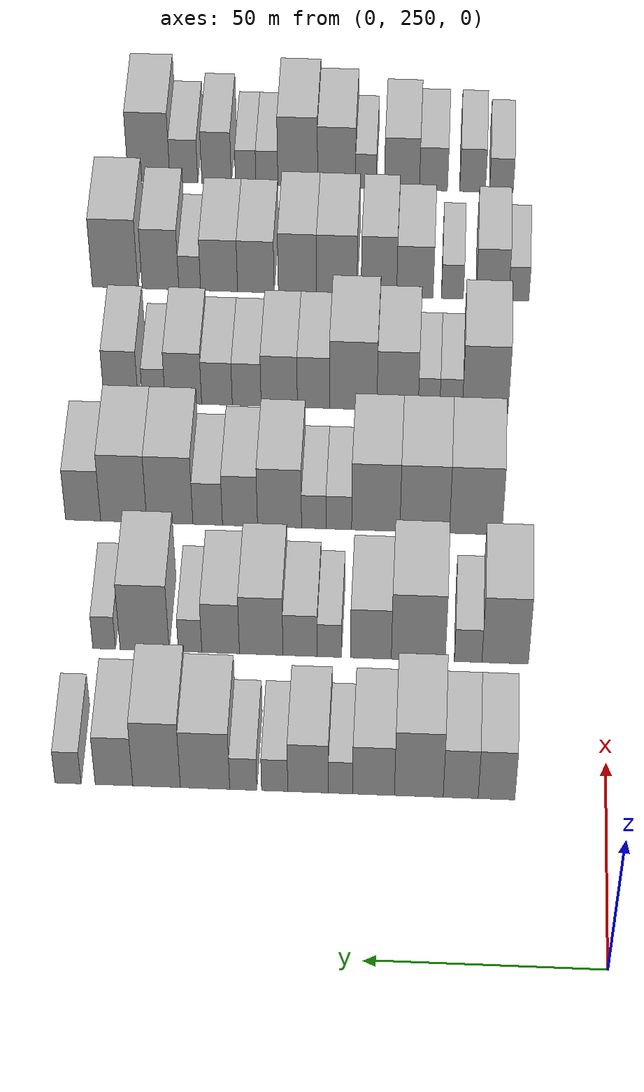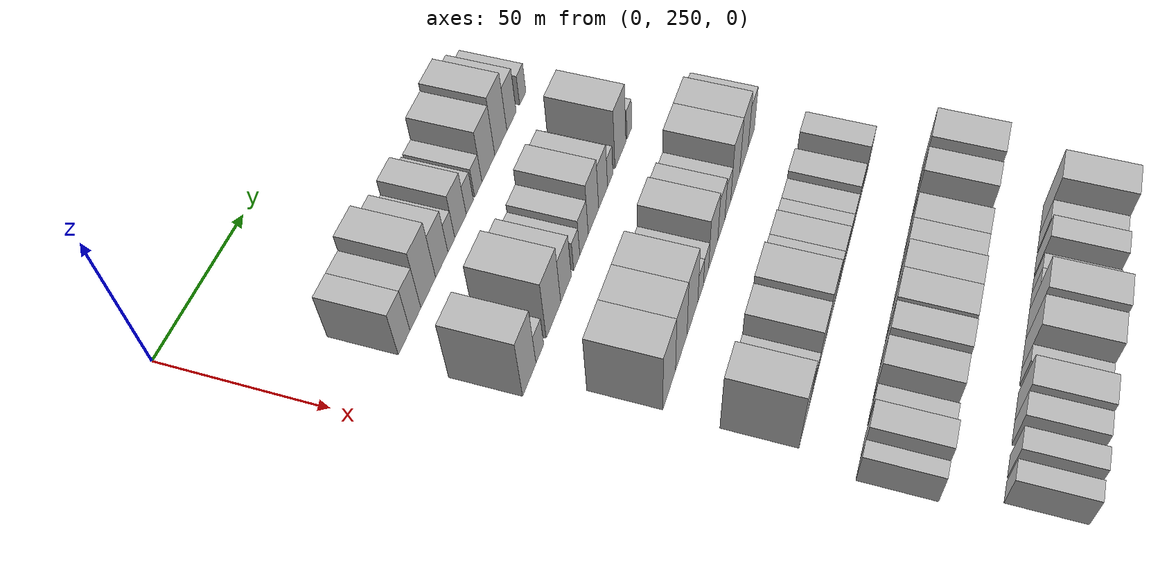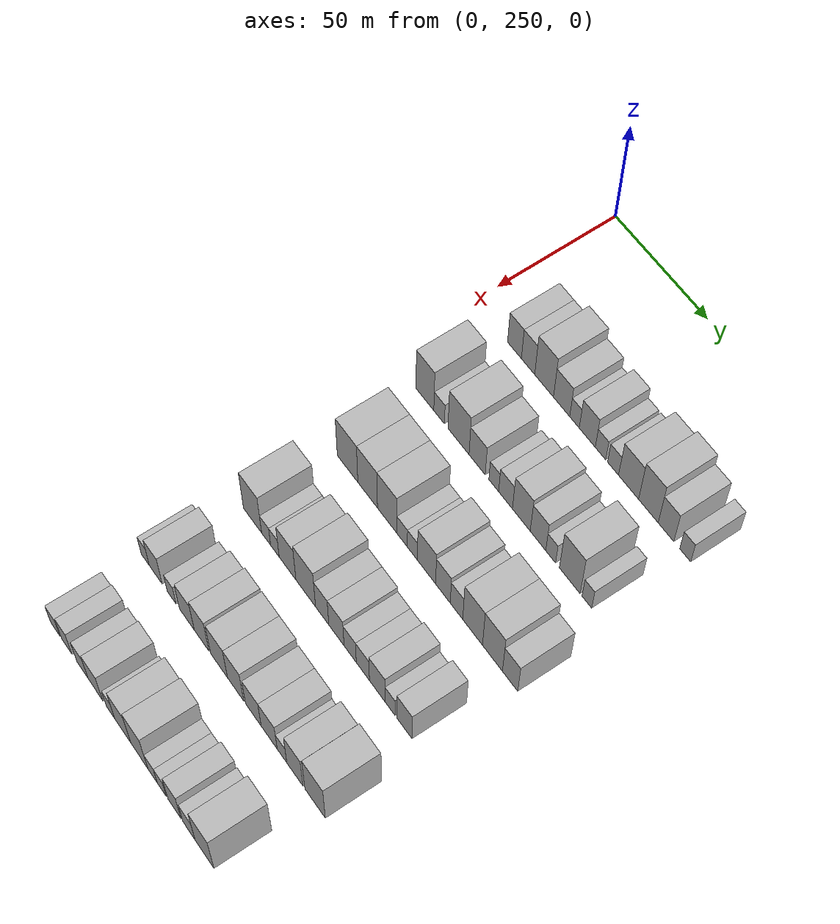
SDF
<sdf version="1.6">
 <world name="default">
  <model name="building_82">
   <static>1</static>
   <pose>50.0000 273.2638 0 0.000000 0.000000 0.000000</pose>
   <link name="link">
    <pose>0 0 9.00 0 0 0</pose>
    <collision name="collision"><geometry><box><size>20.0000 7.7485 18.0000</size></box></geometry></collision>
    <visual name="visual">
     <cast_shadows>0</cast_shadows>
     <geometry><box><size>20.0000 7.7485 18.0000</size></box></geometry>
     <material>
      <script>
       <uri>model://HANNAS_wall/materials/scripts</uri>
       <uri>model://HANNAS_wall/materials/textures</uri>
       <name>vrc/HANNAS_wall</name>
      </script>
     </material>
    </visual>
   </link>
  </model>
  <model name="building_83">
   <static>1</static>
   <pose>50.0000 280.8363 0 0.000000 0.000000 0.000000</pose>
   <link name="link">
    <pose>0 0 9.00 0 0 0</pose>
    <collision name="collision"><geometry><box><size>20.0000 7.3966 18.0000</size></box></geometry></collision>
    <visual name="visual">
     <cast_shadows>0</cast_shadows>
     <geometry><box><size>20.0000 7.3966 18.0000</size></box></geometry>
     <material>
      <script>
       <uri>model://HANNAS_wall/materials/scripts</uri>
       <uri>model://HANNAS_wall/materials/textures</uri>
       <name>vrc/HANNAS_wall</name>
      </script>
     </material>
    </visual>
   </link>
  </model>
  <model name="building_84">
   <static>1</static>
   <pose>50.0000 289.6935 0 0.000000 0.000000 0.000000</pose>
   <link name="link">
    <pose>0 0 12.00 0 0 0</pose>
    <collision name="collision"><geometry><box><size>20.0000 10.3177 24.0000</size></box></geometry></collision>
    <visual name="visual">
     <cast_shadows>0</cast_shadows>
     <geometry><box><size>20.0000 10.3177 24.0000</size></box></geometry>
     <material>
      <script>
       <uri>model://HANNAS_wall/materials/scripts</uri>
       <uri>model://HANNAS_wall/materials/textures</uri>
       <name>vrc/HANNAS_wall</name>
      </script>
     </material>
    </visual>
   </link>
  </model>
  <model name="building_85">
   <static>1</static>
   <pose>50.0000 299.2815 0 0.000000 0.000000 0.000000</pose>
   <link name="link">
    <pose>0 0 9.00 0 0 0</pose>
    <collision name="collision"><geometry><box><size>20.0000 8.8584 18.0000</size></box></geometry></collision>
    <visual name="visual">
     <cast_shadows>0</cast_shadows>
     <geometry><box><size>20.0000 8.8584 18.0000</size></box></geometry>
     <material>
      <script>
       <uri>model://HANNAS_wall/materials/scripts</uri>
       <uri>model://HANNAS_wall/materials/textures</uri>
       <name>vrc/HANNAS_wall</name>
      </script>
     </material>
    </visual>
   </link>
  </model>
  <model name="building_86">
   <static>1</static>
   <pose>50.0000 306.2784 0 0.000000 0.000000 0.000000</pose>
   <link name="link">
    <pose>0 0 6.00 0 0 0</pose>
    <collision name="collision"><geometry><box><size>20.0000 5.1353 12.0000</size></box></geometry></collision>
    <visual name="visual">
     <cast_shadows>0</cast_shadows>
     <geometry><box><size>20.0000 5.1353 12.0000</size></box></geometry>
     <material>
      <script>
       <uri>model://HANNAS_wall/materials/scripts</uri>
       <uri>model://HANNAS_wall/materials/textures</uri>
       <name>vrc/HANNAS_wall</name>
      </script>
     </material>
    </visual>
   </link>
  </model>
  <model name="building_87">
   <static>1</static>
   <pose>50.0000 313.1456 0 0.000000 0.000000 0.000000</pose>
   <link name="link">
    <pose>0 0 9.00 0 0 0</pose>
    <collision name="collision"><geometry><box><size>20.0000 8.5992 18.0000</size></box></geometry></collision>
    <visual name="visual">
     <cast_shadows>0</cast_shadows>
     <geometry><box><size>20.0000 8.5992 18.0000</size></box></geometry>
     <material>
      <script>
       <uri>model://HANNAS_wall/materials/scripts</uri>
       <uri>model://HANNAS_wall/materials/textures</uri>
       <name>vrc/HANNAS_wall</name>
      </script>
     </material>
    </visual>
   </link>
  </model>
  <model name="building_88">
   <static>1</static>
   <pose>50.0000 320.2169 0 0.000000 0.000000 0.000000</pose>
   <link name="link">
    <pose>0 0 6.00 0 0 0</pose>
    <collision name="collision"><geometry><box><size>20.0000 5.5434 12.0000</size></box></geometry></collision>
    <visual name="visual">
     <cast_shadows>0</cast_shadows>
     <geometry><box><size>20.0000 5.5434 12.0000</size></box></geometry>
     <material>
      <script>
       <uri>model://HANNAS_wall/materials/scripts</uri>
       <uri>model://HANNAS_wall/materials/textures</uri>
       <name>vrc/HANNAS_wall</name>
      </script>
     </material>
    </visual>
   </link>
  </model>
  <model name="building_89">
   <static>1</static>
   <pose>50.0000 326.8681 0 0.000000 0.000000 0.000000</pose>
   <link name="link">
    <pose>0 0 6.00 0 0 0</pose>
    <collision name="collision"><geometry><box><size>20.0000 5.7590 12.0000</size></box></geometry></collision>
    <visual name="visual">
     <cast_shadows>0</cast_shadows>
     <geometry><box><size>20.0000 5.7590 12.0000</size></box></geometry>
     <material>
      <script>
       <uri>model://HANNAS_wall/materials/scripts</uri>
       <uri>model://HANNAS_wall/materials/textures</uri>
       <name>vrc/HANNAS_wall</name>
      </script>
     </material>
    </visual>
   </link>
  </model>
  <model name="building_90">
   <static>1</static>
   <pose>50.0000 334.9891 0 0.000000 0.000000 0.000000</pose>
   <link name="link">
    <pose>0 0 10.50 0 0 0</pose>
    <collision name="collision"><geometry><box><size>20.0000 10.4832 21.0000</size></box></geometry></collision>
    <visual name="visual">
     <cast_shadows>0</cast_shadows>
     <geometry><box><size>20.0000 10.4832 21.0000</size></box></geometry>
     <material>
      <script>
       <uri>model://HANNAS_wall/materials/scripts</uri>
       <uri>model://HANNAS_wall/materials/textures</uri>
       <name>vrc/HANNAS_wall</name>
      </script>
     </material>
    </visual>
   </link>
  </model>
  <model name="building_91">
   <static>1</static>
   <pose>50.0000 345.2784 0 0.000000 0.000000 0.000000</pose>
   <link name="link">
    <pose>0 0 12.00 0 0 0</pose>
    <collision name="collision"><geometry><box><size>20.0000 10.0953 24.0000</size></box></geometry></collision>
    <visual name="visual">
     <cast_shadows>0</cast_shadows>
     <geometry><box><size>20.0000 10.0953 24.0000</size></box></geometry>
     <material>
      <script>
       <uri>model://HANNAS_wall/materials/scripts</uri>
       <uri>model://HANNAS_wall/materials/textures</uri>
       <name>vrc/HANNAS_wall</name>
      </script>
     </material>
    </visual>
   </link>
  </model>
  <model name="building_92">
   <static>1</static>
   <pose>50.0000 354.3296 0 0.000000 0.000000 0.000000</pose>
   <link name="link">
    <pose>0 0 9.00 0 0 0</pose>
    <collision name="collision"><geometry><box><size>20.0000 8.0071 18.0000</size></box></geometry></collision>
    <visual name="visual">
     <cast_shadows>0</cast_shadows>
     <geometry><box><size>20.0000 8.0071 18.0000</size></box></geometry>
     <material>
      <script>
       <uri>model://HANNAS_wall/materials/scripts</uri>
       <uri>model://HANNAS_wall/materials/textures</uri>
       <name>vrc/HANNAS_wall</name>
      </script>
     </material>
    </visual>
   </link>
  </model>
  <model name="building_93">
   <static>1</static>
   <pose>50.0000 364.1031 0 0.000000 0.000000 0.000000</pose>
   <link name="link">
    <pose>0 0 6.00 0 0 0</pose>
    <collision name="collision"><geometry><box><size>20.0000 5.5400 12.0000</size></box></geometry></collision>
    <visual name="visual">
     <cast_shadows>0</cast_shadows>
     <geometry><box><size>20.0000 5.5400 12.0000</size></box></geometry>
     <material>
      <script>
       <uri>model://HANNAS_wall/materials/scripts</uri>
       <uri>model://HANNAS_wall/materials/textures</uri>
       <name>vrc/HANNAS_wall</name>
      </script>
     </material>
    </visual>
   </link>
  </model>
  <model name="building_214">
   <static>1</static>
   <pose>85.0000 271.7934 0 0.000000 0.000000 0.000000</pose>
   <link name="link">
    <pose>0 0 12.00 0 0 0</pose>
    <collision name="collision"><geometry><box><size>20.0000 10.1428 24.0000</size></box></geometry></collision>
    <visual name="visual">
     <cast_shadows>0</cast_shadows>
     <geometry><box><size>20.0000 10.1428 24.0000</size></box></geometry>
     <material>
      <script>
       <uri>model://HANNAS_wall/materials/scripts</uri>
       <uri>model://HANNAS_wall/materials/textures</uri>
       <name>vrc/HANNAS_wall</name>
      </script>
     </material>
    </visual>
   </link>
  </model>
  <model name="building_215">
   <static>1</static>
   <pose>85.0000 279.8619 0 0.000000 0.000000 0.000000</pose>
   <link name="link">
    <pose>0 0 6.00 0 0 0</pose>
    <collision name="collision"><geometry><box><size>20.0000 5.9943 12.0000</size></box></geometry></collision>
    <visual name="visual">
     <cast_shadows>0</cast_shadows>
     <geometry><box><size>20.0000 5.9943 12.0000</size></box></geometry>
     <material>
      <script>
       <uri>model://HANNAS_wall/materials/scripts</uri>
       <uri>model://HANNAS_wall/materials/textures</uri>
       <name>vrc/HANNAS_wall</name>
      </script>
     </material>
    </visual>
   </link>
  </model>
  <model name="building_216">
   <static>1</static>
   <pose>85.0000 290.7375 0 0.000000 0.000000 0.000000</pose>
   <link name="link">
    <pose>0 0 12.00 0 0 0</pose>
    <collision name="collision"><geometry><box><size>20.0000 11.7570 24.0000</size></box></geometry></collision>
    <visual name="visual">
     <cast_shadows>0</cast_shadows>
     <geometry><box><size>20.0000 11.7570 24.0000</size></box></geometry>
     <material>
      <script>
       <uri>model://HANNAS_wall/materials/scripts</uri>
       <uri>model://HANNAS_wall/materials/textures</uri>
       <name>vrc/HANNAS_wall</name>
      </script>
     </material>
    </visual>
   </link>
  </model>
  <model name="building_217">
   <static>1</static>
   <pose>85.0000 301.0662 0 0.000000 0.000000 0.000000</pose>
   <link name="link">
    <pose>0 0 9.00 0 0 0</pose>
    <collision name="collision"><geometry><box><size>20.0000 8.9003 18.0000</size></box></geometry></collision>
    <visual name="visual">
     <cast_shadows>0</cast_shadows>
     <geometry><box><size>20.0000 8.9003 18.0000</size></box></geometry>
     <material>
      <script>
       <uri>model://HANNAS_wall/materials/scripts</uri>
       <uri>model://HANNAS_wall/materials/textures</uri>
       <name>vrc/HANNAS_wall</name>
      </script>
     </material>
    </visual>
   </link>
  </model>
  <model name="building_218">
   <static>1</static>
   <pose>85.0000 310.1659 0 0.000000 0.000000 0.000000</pose>
   <link name="link">
    <pose>0 0 6.00 0 0 0</pose>
    <collision name="collision"><geometry><box><size>20.0000 5.2990 12.0000</size></box></geometry></collision>
    <visual name="visual">
     <cast_shadows>0</cast_shadows>
     <geometry><box><size>20.0000 5.2990 12.0000</size></box></geometry>
     <material>
      <script>
       <uri>model://HANNAS_wall/materials/scripts</uri>
       <uri>model://HANNAS_wall/materials/textures</uri>
       <name>vrc/HANNAS_wall</name>
      </script>
     </material>
    </visual>
   </link>
  </model>
  <model name="building_219">
   <static>1</static>
   <pose>85.0000 316.5509 0 0.000000 0.000000 0.000000</pose>
   <link name="link">
    <pose>0 0 7.50 0 0 0</pose>
    <collision name="collision"><geometry><box><size>20.0000 7.4711 15.0000</size></box></geometry></collision>
    <visual name="visual">
     <cast_shadows>0</cast_shadows>
     <geometry><box><size>20.0000 7.4711 15.0000</size></box></geometry>
     <material>
      <script>
       <uri>model://HANNAS_wall/materials/scripts</uri>
       <uri>model://HANNAS_wall/materials/textures</uri>
       <name>vrc/HANNAS_wall</name>
      </script>
     </material>
    </visual>
   </link>
  </model>
  <model name="building_220">
   <static>1</static>
   <pose>85.0000 325.0482 0 0.000000 0.000000 0.000000</pose>
   <link name="link">
    <pose>0 0 10.50 0 0 0</pose>
    <collision name="collision"><geometry><box><size>20.0000 9.5236 21.0000</size></box></geometry></collision>
    <visual name="visual">
     <cast_shadows>0</cast_shadows>
     <geometry><box><size>20.0000 9.5236 21.0000</size></box></geometry>
     <material>
      <script>
       <uri>model://HANNAS_wall/materials/scripts</uri>
       <uri>model://HANNAS_wall/materials/textures</uri>
       <name>vrc/HANNAS_wall</name>
      </script>
     </material>
    </visual>
   </link>
  </model>
  <model name="building_221">
   <static>1</static>
   <pose>85.0000 333.9292 0 0.000000 0.000000 0.000000</pose>
   <link name="link">
    <pose>0 0 9.00 0 0 0</pose>
    <collision name="collision"><geometry><box><size>20.0000 8.2385 18.0000</size></box></geometry></collision>
    <visual name="visual">
     <cast_shadows>0</cast_shadows>
     <geometry><box><size>20.0000 8.2385 18.0000</size></box></geometry>
     <material>
      <script>
       <uri>model://HANNAS_wall/materials/scripts</uri>
       <uri>model://HANNAS_wall/materials/textures</uri>
       <name>vrc/HANNAS_wall</name>
      </script>
     </material>
    </visual>
   </link>
  </model>
  <model name="building_222">
   <static>1</static>
   <pose>85.0000 340.6288 0 0.000000 0.000000 0.000000</pose>
   <link name="link">
    <pose>0 0 6.00 0 0 0</pose>
    <collision name="collision"><geometry><box><size>20.0000 5.1607 12.0000</size></box></geometry></collision>
    <visual name="visual">
     <cast_shadows>0</cast_shadows>
     <geometry><box><size>20.0000 5.1607 12.0000</size></box></geometry>
     <material>
      <script>
       <uri>model://HANNAS_wall/materials/scripts</uri>
       <uri>model://HANNAS_wall/materials/textures</uri>
       <name>vrc/HANNAS_wall</name>
      </script>
     </material>
    </visual>
   </link>
  </model>
  <model name="building_223">
   <static>1</static>
   <pose>85.0000 350.5916 0 0.000000 0.000000 0.000000</pose>
   <link name="link">
    <pose>0 0 12.00 0 0 0</pose>
    <collision name="collision"><geometry><box><size>20.0000 10.7650 24.0000</size></box></geometry></collision>
    <visual name="visual">
     <cast_shadows>0</cast_shadows>
     <geometry><box><size>20.0000 10.7650 24.0000</size></box></geometry>
     <material>
      <script>
       <uri>model://HANNAS_wall/materials/scripts</uri>
       <uri>model://HANNAS_wall/materials/textures</uri>
       <name>vrc/HANNAS_wall</name>
      </script>
     </material>
    </visual>
   </link>
  </model>
  <model name="building_224">
   <static>1</static>
   <pose>85.0000 359.4635 0 0.000000 0.000000 0.000000</pose>
   <link name="link">
    <pose>0 0 6.00 0 0 0</pose>
    <collision name="collision"><geometry><box><size>20.0000 4.9787 12.0000</size></box></geometry></collision>
    <visual name="visual">
     <cast_shadows>0</cast_shadows>
     <geometry><box><size>20.0000 4.9787 12.0000</size></box></geometry>
     <material>
      <script>
       <uri>model://HANNAS_wall/materials/scripts</uri>
       <uri>model://HANNAS_wall/materials/textures</uri>
       <name>vrc/HANNAS_wall</name>
      </script>
     </material>
    </visual>
   </link>
  </model>
  <model name="building_347">
   <static>1</static>
   <pose>120.0000 278.7661 0 0.000000 0.000000 0.000000</pose>
   <link name="link">
    <pose>0 0 12.00 0 0 0</pose>
    <collision name="collision"><geometry><box><size>20.0000 11.8024 24.0000</size></box></geometry></collision>
    <visual name="visual">
     <cast_shadows>0</cast_shadows>
     <geometry><box><size>20.0000 11.8024 24.0000</size></box></geometry>
     <material>
      <script>
       <uri>model://HANNAS_wall/materials/scripts</uri>
       <uri>model://HANNAS_wall/materials/textures</uri>
       <name>vrc/HANNAS_wall</name>
      </script>
     </material>
    </visual>
   </link>
  </model>
  <model name="building_348">
   <static>1</static>
   <pose>120.0000 290.2264 0 0.000000 0.000000 0.000000</pose>
   <link name="link">
    <pose>0 0 12.00 0 0 0</pose>
    <collision name="collision"><geometry><box><size>20.0000 11.1183 24.0000</size></box></geometry></collision>
    <visual name="visual">
     <cast_shadows>0</cast_shadows>
     <geometry><box><size>20.0000 11.1183 24.0000</size></box></geometry>
     <material>
      <script>
       <uri>model://HANNAS_wall/materials/scripts</uri>
       <uri>model://HANNAS_wall/materials/textures</uri>
       <name>vrc/HANNAS_wall</name>
      </script>
     </material>
    </visual>
   </link>
  </model>
  <model name="building_349">
   <static>1</static>
   <pose>120.0000 301.2231 0 0.000000 0.000000 0.000000</pose>
   <link name="link">
    <pose>0 0 12.00 0 0 0</pose>
    <collision name="collision"><geometry><box><size>20.0000 10.8749 24.0000</size></box></geometry></collision>
    <visual name="visual">
     <cast_shadows>0</cast_shadows>
     <geometry><box><size>20.0000 10.8749 24.0000</size></box></geometry>
     <material>
      <script>
       <uri>model://HANNAS_wall/materials/scripts</uri>
       <uri>model://HANNAS_wall/materials/textures</uri>
       <name>vrc/HANNAS_wall</name>
      </script>
     </material>
    </visual>
   </link>
  </model>
  <model name="building_350">
   <static>1</static>
   <pose>120.0000 309.5581 0 0.000000 0.000000 0.000000</pose>
   <link name="link">
    <pose>0 0 6.00 0 0 0</pose>
    <collision name="collision"><geometry><box><size>20.0000 5.7952 12.0000</size></box></geometry></collision>
    <visual name="visual">
     <cast_shadows>0</cast_shadows>
     <geometry><box><size>20.0000 5.7952 12.0000</size></box></geometry>
     <material>
      <script>
       <uri>model://HANNAS_wall/materials/scripts</uri>
       <uri>model://HANNAS_wall/materials/textures</uri>
       <name>vrc/HANNAS_wall</name>
      </script>
     </material>
    </visual>
   </link>
  </model>
  <model name="building_351">
   <static>1</static>
   <pose>120.0000 315.2058 0 0.000000 0.000000 0.000000</pose>
   <link name="link">
    <pose>0 0 6.00 0 0 0</pose>
    <collision name="collision"><geometry><box><size>20.0000 5.5002 12.0000</size></box></geometry></collision>
    <visual name="visual">
     <cast_shadows>0</cast_shadows>
     <geometry><box><size>20.0000 5.5002 12.0000</size></box></geometry>
     <material>
      <script>
       <uri>model://HANNAS_wall/materials/scripts</uri>
       <uri>model://HANNAS_wall/materials/textures</uri>
       <name>vrc/HANNAS_wall</name>
      </script>
     </material>
    </visual>
   </link>
  </model>
  <model name="building_352">
   <static>1</static>
   <pose>120.0000 322.9151 0 0.000000 0.000000 0.000000</pose>
   <link name="link">
    <pose>0 0 10.50 0 0 0</pose>
    <collision name="collision"><geometry><box><size>20.0000 9.9185 21.0000</size></box></geometry></collision>
    <visual name="visual">
     <cast_shadows>0</cast_shadows>
     <geometry><box><size>20.0000 9.9185 21.0000</size></box></geometry>
     <material>
      <script>
       <uri>model://HANNAS_wall/materials/scripts</uri>
       <uri>model://HANNAS_wall/materials/textures</uri>
       <name>vrc/HANNAS_wall</name>
      </script>
     </material>
    </visual>
   </link>
  </model>
  <model name="building_353">
   <static>1</static>
   <pose>120.0000 331.8286 0 0.000000 0.000000 0.000000</pose>
   <link name="link">
    <pose>0 0 9.00 0 0 0</pose>
    <collision name="collision"><geometry><box><size>20.0000 7.9084 18.0000</size></box></geometry></collision>
    <visual name="visual">
     <cast_shadows>0</cast_shadows>
     <geometry><box><size>20.0000 7.9084 18.0000</size></box></geometry>
     <material>
      <script>
       <uri>model://HANNAS_wall/materials/scripts</uri>
       <uri>model://HANNAS_wall/materials/textures</uri>
       <name>vrc/HANNAS_wall</name>
      </script>
     </material>
    </visual>
   </link>
  </model>
  <model name="building_354">
   <static>1</static>
   <pose>120.0000 339.1162 0 0.000000 0.000000 0.000000</pose>
   <link name="link">
    <pose>0 0 7.50 0 0 0</pose>
    <collision name="collision"><geometry><box><size>20.0000 6.6668 15.0000</size></box></geometry></collision>
    <visual name="visual">
     <cast_shadows>0</cast_shadows>
     <geometry><box><size>20.0000 6.6668 15.0000</size></box></geometry>
     <material>
      <script>
       <uri>model://HANNAS_wall/materials/scripts</uri>
       <uri>model://HANNAS_wall/materials/textures</uri>
       <name>vrc/HANNAS_wall</name>
      </script>
     </material>
    </visual>
   </link>
  </model>
  <model name="building_355">
   <static>1</static>
   <pose>120.0000 347.6645 0 0.000000 0.000000 0.000000</pose>
   <link name="link">
    <pose>0 0 12.00 0 0 0</pose>
    <collision name="collision"><geometry><box><size>20.0000 10.4297 24.0000</size></box></geometry></collision>
    <visual name="visual">
     <cast_shadows>0</cast_shadows>
     <geometry><box><size>20.0000 10.4297 24.0000</size></box></geometry>
     <material>
      <script>
       <uri>model://HANNAS_wall/materials/scripts</uri>
       <uri>model://HANNAS_wall/materials/textures</uri>
       <name>vrc/HANNAS_wall</name>
      </script>
     </material>
    </visual>
   </link>
  </model>
  <model name="building_356">
   <static>1</static>
   <pose>120.0000 358.0957 0 0.000000 0.000000 0.000000</pose>
   <link name="link">
    <pose>0 0 12.00 0 0 0</pose>
    <collision name="collision"><geometry><box><size>20.0000 10.4328 24.0000</size></box></geometry></collision>
    <visual name="visual">
     <cast_shadows>0</cast_shadows>
     <geometry><box><size>20.0000 10.4328 24.0000</size></box></geometry>
     <material>
      <script>
       <uri>model://HANNAS_wall/materials/scripts</uri>
       <uri>model://HANNAS_wall/materials/textures</uri>
       <name>vrc/HANNAS_wall</name>
      </script>
     </material>
    </visual>
   </link>
  </model>
  <model name="building_357">
   <static>1</static>
   <pose>120.0000 367.2737 0 0.000000 0.000000 0.000000</pose>
   <link name="link">
    <pose>0 0 9.00 0 0 0</pose>
    <collision name="collision"><geometry><box><size>20.0000 7.9232 18.0000</size></box></geometry></collision>
    <visual name="visual">
     <cast_shadows>0</cast_shadows>
     <geometry><box><size>20.0000 7.9232 18.0000</size></box></geometry>
     <material>
      <script>
       <uri>model://HANNAS_wall/materials/scripts</uri>
       <uri>model://HANNAS_wall/materials/textures</uri>
       <name>vrc/HANNAS_wall</name>
      </script>
     </material>
    </visual>
   </link>
  </model>
  <model name="building_474">
   <static>1</static>
   <pose>155.0000 277.1230 0 0.000000 0.000000 0.000000</pose>
   <link name="link">
    <pose>0 0 12.00 0 0 0</pose>
    <collision name="collision"><geometry><box><size>20.0000 10.5882 24.0000</size></box></geometry></collision>
    <visual name="visual">
     <cast_shadows>0</cast_shadows>
     <geometry><box><size>20.0000 10.5882 24.0000</size></box></geometry>
     <material>
      <script>
       <uri>model://HANNAS_wall/materials/scripts</uri>
       <uri>model://HANNAS_wall/materials/textures</uri>
       <name>vrc/HANNAS_wall</name>
      </script>
     </material>
    </visual>
   </link>
  </model>
  <model name="building_475">
   <static>1</static>
   <pose>155.0000 285.0278 0 0.000000 0.000000 0.000000</pose>
   <link name="link">
    <pose>0 0 6.00 0 0 0</pose>
    <collision name="collision"><geometry><box><size>20.0000 5.2213 12.0000</size></box></geometry></collision>
    <visual name="visual">
     <cast_shadows>0</cast_shadows>
     <geometry><box><size>20.0000 5.2213 12.0000</size></box></geometry>
     <material>
      <script>
       <uri>model://HANNAS_wall/materials/scripts</uri>
       <uri>model://HANNAS_wall/materials/textures</uri>
       <name>vrc/HANNAS_wall</name>
      </script>
     </material>
    </visual>
   </link>
  </model>
  <model name="building_476">
   <static>1</static>
   <pose>155.0000 290.1247 0 0.000000 0.000000 0.000000</pose>
   <link name="link">
    <pose>0 0 6.00 0 0 0</pose>
    <collision name="collision"><geometry><box><size>20.0000 4.9726 12.0000</size></box></geometry></collision>
    <visual name="visual">
     <cast_shadows>0</cast_shadows>
     <geometry><box><size>20.0000 4.9726 12.0000</size></box></geometry>
     <material>
      <script>
       <uri>model://HANNAS_wall/materials/scripts</uri>
       <uri>model://HANNAS_wall/materials/textures</uri>
       <name>vrc/HANNAS_wall</name>
      </script>
     </material>
    </visual>
   </link>
  </model>
  <model name="building_477">
   <static>1</static>
   <pose>155.0000 297.3864 0 0.000000 0.000000 0.000000</pose>
   <link name="link">
    <pose>0 0 10.50 0 0 0</pose>
    <collision name="collision"><geometry><box><size>20.0000 9.5509 21.0000</size></box></geometry></collision>
    <visual name="visual">
     <cast_shadows>0</cast_shadows>
     <geometry><box><size>20.0000 9.5509 21.0000</size></box></geometry>
     <material>
      <script>
       <uri>model://HANNAS_wall/materials/scripts</uri>
       <uri>model://HANNAS_wall/materials/textures</uri>
       <name>vrc/HANNAS_wall</name>
      </script>
     </material>
    </visual>
   </link>
  </model>
  <model name="building_478">
   <static>1</static>
   <pose>155.0000 307.6846 0 0.000000 0.000000 0.000000</pose>
   <link name="link">
    <pose>0 0 12.00 0 0 0</pose>
    <collision name="collision"><geometry><box><size>20.0000 11.0455 24.0000</size></box></geometry></collision>
    <visual name="visual">
     <cast_shadows>0</cast_shadows>
     <geometry><box><size>20.0000 11.0455 24.0000</size></box></geometry>
     <material>
      <script>
       <uri>model://HANNAS_wall/materials/scripts</uri>
       <uri>model://HANNAS_wall/materials/textures</uri>
       <name>vrc/HANNAS_wall</name>
      </script>
     </material>
    </visual>
   </link>
  </model>
  <model name="building_479">
   <static>1</static>
   <pose>155.0000 316.9202 0 0.000000 0.000000 0.000000</pose>
   <link name="link">
    <pose>0 0 9.00 0 0 0</pose>
    <collision name="collision"><geometry><box><size>20.0000 7.4256 18.0000</size></box></geometry></collision>
    <visual name="visual">
     <cast_shadows>0</cast_shadows>
     <geometry><box><size>20.0000 7.4256 18.0000</size></box></geometry>
     <material>
      <script>
       <uri>model://HANNAS_wall/materials/scripts</uri>
       <uri>model://HANNAS_wall/materials/textures</uri>
       <name>vrc/HANNAS_wall</name>
      </script>
     </material>
    </visual>
   </link>
  </model>
  <model name="building_480">
   <static>1</static>
   <pose>155.0000 324.8369 0 0.000000 0.000000 0.000000</pose>
   <link name="link">
    <pose>0 0 9.00 0 0 0</pose>
    <collision name="collision"><geometry><box><size>20.0000 8.4078 18.0000</size></box></geometry></collision>
    <visual name="visual">
     <cast_shadows>0</cast_shadows>
     <geometry><box><size>20.0000 8.4078 18.0000</size></box></geometry>
     <material>
      <script>
       <uri>model://HANNAS_wall/materials/scripts</uri>
       <uri>model://HANNAS_wall/materials/textures</uri>
       <name>vrc/HANNAS_wall</name>
      </script>
     </material>
    </visual>
   </link>
  </model>
  <model name="building_481">
   <static>1</static>
   <pose>155.0000 332.3928 0 0.000000 0.000000 0.000000</pose>
   <link name="link">
    <pose>0 0 7.50 0 0 0</pose>
    <collision name="collision"><geometry><box><size>20.0000 6.7039 15.0000</size></box></geometry></collision>
    <visual name="visual">
     <cast_shadows>0</cast_shadows>
     <geometry><box><size>20.0000 6.7039 15.0000</size></box></geometry>
     <material>
      <script>
       <uri>model://HANNAS_wall/materials/scripts</uri>
       <uri>model://HANNAS_wall/materials/textures</uri>
       <name>vrc/HANNAS_wall</name>
      </script>
     </material>
    </visual>
   </link>
  </model>
  <model name="building_482">
   <static>1</static>
   <pose>155.0000 339.3131 0 0.000000 0.000000 0.000000</pose>
   <link name="link">
    <pose>0 0 7.50 0 0 0</pose>
    <collision name="collision"><geometry><box><size>20.0000 7.1367 15.0000</size></box></geometry></collision>
    <visual name="visual">
     <cast_shadows>0</cast_shadows>
     <geometry><box><size>20.0000 7.1367 15.0000</size></box></geometry>
     <material>
      <script>
       <uri>model://HANNAS_wall/materials/scripts</uri>
       <uri>model://HANNAS_wall/materials/textures</uri>
       <name>vrc/HANNAS_wall</name>
      </script>
     </material>
    </visual>
   </link>
  </model>
  <model name="building_483">
   <static>1</static>
   <pose>155.0000 347.1209 0 0.000000 0.000000 0.000000</pose>
   <link name="link">
    <pose>0 0 9.00 0 0 0</pose>
    <collision name="collision"><geometry><box><size>20.0000 8.4790 18.0000</size></box></geometry></collision>
    <visual name="visual">
     <cast_shadows>0</cast_shadows>
     <geometry><box><size>20.0000 8.4790 18.0000</size></box></geometry>
     <material>
      <script>
       <uri>model://HANNAS_wall/materials/scripts</uri>
       <uri>model://HANNAS_wall/materials/textures</uri>
       <name>vrc/HANNAS_wall</name>
      </script>
     </material>
    </visual>
   </link>
  </model>
  <model name="building_484">
   <static>1</static>
   <pose>155.0000 353.9993 0 0.000000 0.000000 0.000000</pose>
   <link name="link">
    <pose>0 0 6.00 0 0 0</pose>
    <collision name="collision"><geometry><box><size>20.0000 5.2779 12.0000</size></box></geometry></collision>
    <visual name="visual">
     <cast_shadows>0</cast_shadows>
     <geometry><box><size>20.0000 5.2779 12.0000</size></box></geometry>
     <material>
      <script>
       <uri>model://HANNAS_wall/materials/scripts</uri>
       <uri>model://HANNAS_wall/materials/textures</uri>
       <name>vrc/HANNAS_wall</name>
      </script>
     </material>
    </visual>
   </link>
  </model>
  <model name="building_485">
   <static>1</static>
   <pose>155.0000 361.6101 0 0.000000 0.000000 0.000000</pose>
   <link name="link">
    <pose>0 0 9.00 0 0 0</pose>
    <collision name="collision"><geometry><box><size>20.0000 7.9436 18.0000</size></box></geometry></collision>
    <visual name="visual">
     <cast_shadows>0</cast_shadows>
     <geometry><box><size>20.0000 7.9436 18.0000</size></box></geometry>
     <material>
      <script>
       <uri>model://HANNAS_wall/materials/scripts</uri>
       <uri>model://HANNAS_wall/materials/textures</uri>
       <name>vrc/HANNAS_wall</name>
      </script>
     </material>
    </visual>
   </link>
  </model>
  <model name="building_605">
   <static>1</static>
   <pose>190.0000 269.5944 0 0.000000 0.000000 0.000000</pose>
   <link name="link">
    <pose>0 0 6.00 0 0 0</pose>
    <collision name="collision"><geometry><box><size>20.0000 4.8261 12.0000</size></box></geometry></collision>
    <visual name="visual">
     <cast_shadows>0</cast_shadows>
     <geometry><box><size>20.0000 4.8261 12.0000</size></box></geometry>
     <material>
      <script>
       <uri>model://HANNAS_wall/materials/scripts</uri>
       <uri>model://HANNAS_wall/materials/textures</uri>
       <name>vrc/HANNAS_wall</name>
      </script>
     </material>
    </visual>
   </link>
  </model>
  <model name="building_606">
   <static>1</static>
   <pose>190.0000 275.8941 0 0.000000 0.000000 0.000000</pose>
   <link name="link">
    <pose>0 0 9.00 0 0 0</pose>
    <collision name="collision"><geometry><box><size>20.0000 7.7731 18.0000</size></box></geometry></collision>
    <visual name="visual">
     <cast_shadows>0</cast_shadows>
     <geometry><box><size>20.0000 7.7731 18.0000</size></box></geometry>
     <material>
      <script>
       <uri>model://HANNAS_wall/materials/scripts</uri>
       <uri>model://HANNAS_wall/materials/textures</uri>
       <name>vrc/HANNAS_wall</name>
      </script>
     </material>
    </visual>
   </link>
  </model>
  <model name="building_607">
   <static>1</static>
   <pose>190.0000 285.3867 0 0.000000 0.000000 0.000000</pose>
   <link name="link">
    <pose>0 0 6.00 0 0 0</pose>
    <collision name="collision"><geometry><box><size>20.0000 5.2121 12.0000</size></box></geometry></collision>
    <visual name="visual">
     <cast_shadows>0</cast_shadows>
     <geometry><box><size>20.0000 5.2121 12.0000</size></box></geometry>
     <material>
      <script>
       <uri>model://HANNAS_wall/materials/scripts</uri>
       <uri>model://HANNAS_wall/materials/textures</uri>
       <name>vrc/HANNAS_wall</name>
      </script>
     </material>
    </visual>
   </link>
  </model>
  <model name="building_608">
   <static>1</static>
   <pose>190.0000 294.3354 0 0.000000 0.000000 0.000000</pose>
   <link name="link">
    <pose>0 0 9.00 0 0 0</pose>
    <collision name="collision"><geometry><box><size>20.0000 8.6854 18.0000</size></box></geometry></collision>
    <visual name="visual">
     <cast_shadows>0</cast_shadows>
     <geometry><box><size>20.0000 8.6854 18.0000</size></box></geometry>
     <material>
      <script>
       <uri>model://HANNAS_wall/materials/scripts</uri>
       <uri>model://HANNAS_wall/materials/textures</uri>
       <name>vrc/HANNAS_wall</name>
      </script>
     </material>
    </visual>
   </link>
  </model>
  <model name="building_609">
   <static>1</static>
   <pose>190.0000 302.9078 0 0.000000 0.000000 0.000000</pose>
   <link name="link">
    <pose>0 0 10.50 0 0 0</pose>
    <collision name="collision"><geometry><box><size>20.0000 8.4595 21.0000</size></box></geometry></collision>
    <visual name="visual">
     <cast_shadows>0</cast_shadows>
     <geometry><box><size>20.0000 8.4595 21.0000</size></box></geometry>
     <material>
      <script>
       <uri>model://HANNAS_wall/materials/scripts</uri>
       <uri>model://HANNAS_wall/materials/textures</uri>
       <name>vrc/HANNAS_wall</name>
      </script>
     </material>
    </visual>
   </link>
  </model>
  <model name="building_610">
   <static>1</static>
   <pose>190.0000 312.9591 0 0.000000 0.000000 0.000000</pose>
   <link name="link">
    <pose>0 0 10.50 0 0 0</pose>
    <collision name="collision"><geometry><box><size>20.0000 9.6431 21.0000</size></box></geometry></collision>
    <visual name="visual">
     <cast_shadows>0</cast_shadows>
     <geometry><box><size>20.0000 9.6431 21.0000</size></box></geometry>
     <material>
      <script>
       <uri>model://HANNAS_wall/materials/scripts</uri>
       <uri>model://HANNAS_wall/materials/textures</uri>
       <name>vrc/HANNAS_wall</name>
      </script>
     </material>
    </visual>
   </link>
  </model>
  <model name="building_611">
   <static>1</static>
   <pose>190.0000 322.3449 0 0.000000 0.000000 0.000000</pose>
   <link name="link">
    <pose>0 0 10.50 0 0 0</pose>
    <collision name="collision"><geometry><box><size>20.0000 9.1283 21.0000</size></box></geometry></collision>
    <visual name="visual">
     <cast_shadows>0</cast_shadows>
     <geometry><box><size>20.0000 9.1283 21.0000</size></box></geometry>
     <material>
      <script>
       <uri>model://HANNAS_wall/materials/scripts</uri>
       <uri>model://HANNAS_wall/materials/textures</uri>
       <name>vrc/HANNAS_wall</name>
      </script>
     </material>
    </visual>
   </link>
  </model>
  <model name="building_612">
   <static>1</static>
   <pose>190.0000 332.2780 0 0.000000 0.000000 0.000000</pose>
   <link name="link">
    <pose>0 0 9.00 0 0 0</pose>
    <collision name="collision"><geometry><box><size>20.0000 8.7379 18.0000</size></box></geometry></collision>
    <visual name="visual">
     <cast_shadows>0</cast_shadows>
     <geometry><box><size>20.0000 8.7379 18.0000</size></box></geometry>
     <material>
      <script>
       <uri>model://HANNAS_wall/materials/scripts</uri>
       <uri>model://HANNAS_wall/materials/textures</uri>
       <name>vrc/HANNAS_wall</name>
      </script>
     </material>
    </visual>
   </link>
  </model>
  <model name="building_613">
   <static>1</static>
   <pose>190.0000 341.0722 0 0.000000 0.000000 0.000000</pose>
   <link name="link">
    <pose>0 0 9.00 0 0 0</pose>
    <collision name="collision"><geometry><box><size>20.0000 8.8504 18.0000</size></box></geometry></collision>
    <visual name="visual">
     <cast_shadows>0</cast_shadows>
     <geometry><box><size>20.0000 8.8504 18.0000</size></box></geometry>
     <material>
      <script>
       <uri>model://HANNAS_wall/materials/scripts</uri>
       <uri>model://HANNAS_wall/materials/textures</uri>
       <name>vrc/HANNAS_wall</name>
      </script>
     </material>
    </visual>
   </link>
  </model>
  <model name="building_614">
   <static>1</static>
   <pose>190.0000 348.1092 0 0.000000 0.000000 0.000000</pose>
   <link name="link">
    <pose>0 0 6.00 0 0 0</pose>
    <collision name="collision"><geometry><box><size>20.0000 5.2238 12.0000</size></box></geometry></collision>
    <visual name="visual">
     <cast_shadows>0</cast_shadows>
     <geometry><box><size>20.0000 5.2238 12.0000</size></box></geometry>
     <material>
      <script>
       <uri>model://HANNAS_wall/materials/scripts</uri>
       <uri>model://HANNAS_wall/materials/textures</uri>
       <name>vrc/HANNAS_wall</name>
      </script>
     </material>
    </visual>
   </link>
  </model>
  <model name="building_615">
   <static>1</static>
   <pose>190.0000 355.1042 0 0.000000 0.000000 0.000000</pose>
   <link name="link">
    <pose>0 0 10.50 0 0 0</pose>
    <collision name="collision"><geometry><box><size>20.0000 8.7662 21.0000</size></box></geometry></collision>
    <visual name="visual">
     <cast_shadows>0</cast_shadows>
     <geometry><box><size>20.0000 8.7662 21.0000</size></box></geometry>
     <material>
      <script>
       <uri>model://HANNAS_wall/materials/scripts</uri>
       <uri>model://HANNAS_wall/materials/textures</uri>
       <name>vrc/HANNAS_wall</name>
      </script>
     </material>
    </visual>
   </link>
  </model>
  <model name="building_616">
   <static>1</static>
   <pose>190.0000 365.9619 0 0.000000 0.000000 0.000000</pose>
   <link name="link">
    <pose>0 0 12.00 0 0 0</pose>
    <collision name="collision"><geometry><box><size>20.0000 10.9491 24.0000</size></box></geometry></collision>
    <visual name="visual">
     <cast_shadows>0</cast_shadows>
     <geometry><box><size>20.0000 10.9491 24.0000</size></box></geometry>
     <material>
      <script>
       <uri>model://HANNAS_wall/materials/scripts</uri>
       <uri>model://HANNAS_wall/materials/textures</uri>
       <name>vrc/HANNAS_wall</name>
      </script>
     </material>
    </visual>
   </link>
  </model>
  <model name="building_732">
   <static>1</static>
   <pose>225.0000 274.0908 0 0.000000 0.000000 0.000000</pose>
   <link name="link">
    <pose>0 0 6.00 0 0 0</pose>
    <collision name="collision"><geometry><box><size>20.0000 5.7952 12.0000</size></box></geometry></collision>
    <visual name="visual">
     <cast_shadows>0</cast_shadows>
     <geometry><box><size>20.0000 5.7952 12.0000</size></box></geometry>
     <material>
      <script>
       <uri>model://HANNAS_wall/materials/scripts</uri>
       <uri>model://HANNAS_wall/materials/textures</uri>
       <name>vrc/HANNAS_wall</name>
      </script>
     </material>
    </visual>
   </link>
  </model>
  <model name="building_733">
   <static>1</static>
   <pose>225.0000 281.1413 0 0.000000 0.000000 0.000000</pose>
   <link name="link">
    <pose>0 0 7.50 0 0 0</pose>
    <collision name="collision"><geometry><box><size>20.0000 6.3057 15.0000</size></box></geometry></collision>
    <visual name="visual">
     <cast_shadows>0</cast_shadows>
     <geometry><box><size>20.0000 6.3057 15.0000</size></box></geometry>
     <material>
      <script>
       <uri>model://HANNAS_wall/materials/scripts</uri>
       <uri>model://HANNAS_wall/materials/textures</uri>
       <name>vrc/HANNAS_wall</name>
      </script>
     </material>
    </visual>
   </link>
  </model>
  <model name="building_734">
   <static>1</static>
   <pose>225.0000 290.7256 0 0.000000 0.000000 0.000000</pose>
   <link name="link">
    <pose>0 0 7.50 0 0 0</pose>
    <collision name="collision"><geometry><box><size>20.0000 6.8629 15.0000</size></box></geometry></collision>
    <visual name="visual">
     <cast_shadows>0</cast_shadows>
     <geometry><box><size>20.0000 6.8629 15.0000</size></box></geometry>
     <material>
      <script>
       <uri>model://HANNAS_wall/materials/scripts</uri>
       <uri>model://HANNAS_wall/materials/textures</uri>
       <name>vrc/HANNAS_wall</name>
      </script>
     </material>
    </visual>
   </link>
  </model>
  <model name="building_735">
   <static>1</static>
   <pose>225.0000 298.4476 0 0.000000 0.000000 0.000000</pose>
   <link name="link">
    <pose>0 0 9.00 0 0 0</pose>
    <collision name="collision"><geometry><box><size>20.0000 8.5812 18.0000</size></box></geometry></collision>
    <visual name="visual">
     <cast_shadows>0</cast_shadows>
     <geometry><box><size>20.0000 8.5812 18.0000</size></box></geometry>
     <material>
      <script>
       <uri>model://HANNAS_wall/materials/scripts</uri>
       <uri>model://HANNAS_wall/materials/textures</uri>
       <name>vrc/HANNAS_wall</name>
      </script>
     </material>
    </visual>
   </link>
  </model>
  <model name="building_736">
   <static>1</static>
   <pose>225.0000 307.2900 0 0.000000 0.000000 0.000000</pose>
   <link name="link">
    <pose>0 0 6.00 0 0 0</pose>
    <collision name="collision"><geometry><box><size>20.0000 5.1035 12.0000</size></box></geometry></collision>
    <visual name="visual">
     <cast_shadows>0</cast_shadows>
     <geometry><box><size>20.0000 5.1035 12.0000</size></box></geometry>
     <material>
      <script>
       <uri>model://HANNAS_wall/materials/scripts</uri>
       <uri>model://HANNAS_wall/materials/textures</uri>
       <name>vrc/HANNAS_wall</name>
      </script>
     </material>
    </visual>
   </link>
  </model>
  <model name="building_737">
   <static>1</static>
   <pose>225.0000 314.4964 0 0.000000 0.000000 0.000000</pose>
   <link name="link">
    <pose>0 0 10.50 0 0 0</pose>
    <collision name="collision"><geometry><box><size>20.0000 9.3093 21.0000</size></box></geometry></collision>
    <visual name="visual">
     <cast_shadows>0</cast_shadows>
     <geometry><box><size>20.0000 9.3093 21.0000</size></box></geometry>
     <material>
      <script>
       <uri>model://HANNAS_wall/materials/scripts</uri>
       <uri>model://HANNAS_wall/materials/textures</uri>
       <name>vrc/HANNAS_wall</name>
      </script>
     </material>
    </visual>
   </link>
  </model>
  <model name="building_738">
   <static>1</static>
   <pose>225.0000 324.0233 0 0.000000 0.000000 0.000000</pose>
   <link name="link">
    <pose>0 0 12.00 0 0 0</pose>
    <collision name="collision"><geometry><box><size>20.0000 9.7444 24.0000</size></box></geometry></collision>
    <visual name="visual">
     <cast_shadows>0</cast_shadows>
     <geometry><box><size>20.0000 9.7444 24.0000</size></box></geometry>
     <material>
      <script>
       <uri>model://HANNAS_wall/materials/scripts</uri>
       <uri>model://HANNAS_wall/materials/textures</uri>
       <name>vrc/HANNAS_wall</name>
      </script>
     </material>
    </visual>
   </link>
  </model>
  <model name="building_739">
   <static>1</static>
   <pose>225.0000 331.5916 0 0.000000 0.000000 0.000000</pose>
   <link name="link">
    <pose>0 0 6.00 0 0 0</pose>
    <collision name="collision"><geometry><box><size>20.0000 5.3922 12.0000</size></box></geometry></collision>
    <visual name="visual">
     <cast_shadows>0</cast_shadows>
     <geometry><box><size>20.0000 5.3922 12.0000</size></box></geometry>
     <material>
      <script>
       <uri>model://HANNAS_wall/materials/scripts</uri>
       <uri>model://HANNAS_wall/materials/textures</uri>
       <name>vrc/HANNAS_wall</name>
      </script>
     </material>
    </visual>
   </link>
  </model>
  <model name="building_740">
   <static>1</static>
   <pose>225.0000 336.8063 0 0.000000 0.000000 0.000000</pose>
   <link name="link">
    <pose>0 0 6.00 0 0 0</pose>
    <collision name="collision"><geometry><box><size>20.0000 5.0372 12.0000</size></box></geometry></collision>
    <visual name="visual">
     <cast_shadows>0</cast_shadows>
     <geometry><box><size>20.0000 5.0372 12.0000</size></box></geometry>
     <material>
      <script>
       <uri>model://HANNAS_wall/materials/scripts</uri>
       <uri>model://HANNAS_wall/materials/textures</uri>
       <name>vrc/HANNAS_wall</name>
      </script>
     </material>
    </visual>
   </link>
  </model>
  <model name="building_741">
   <static>1</static>
   <pose>225.0000 343.9647 0 0.000000 0.000000 0.000000</pose>
   <link name="link">
    <pose>0 0 9.00 0 0 0</pose>
    <collision name="collision"><geometry><box><size>20.0000 7.2795 18.0000</size></box></geometry></collision>
    <visual name="visual">
     <cast_shadows>0</cast_shadows>
     <geometry><box><size>20.0000 7.2795 18.0000</size></box></geometry>
     <material>
      <script>
       <uri>model://HANNAS_wall/materials/scripts</uri>
       <uri>model://HANNAS_wall/materials/textures</uri>
       <name>vrc/HANNAS_wall</name>
      </script>
     </material>
    </visual>
   </link>
  </model>
  <model name="building_742">
   <static>1</static>
   <pose>225.0000 352.0279 0 0.000000 0.000000 0.000000</pose>
   <link name="link">
    <pose>0 0 7.50 0 0 0</pose>
    <collision name="collision"><geometry><box><size>20.0000 6.8470 15.0000</size></box></geometry></collision>
    <visual name="visual">
     <cast_shadows>0</cast_shadows>
     <geometry><box><size>20.0000 6.8470 15.0000</size></box></geometry>
     <material>
      <script>
       <uri>model://HANNAS_wall/materials/scripts</uri>
       <uri>model://HANNAS_wall/materials/textures</uri>
       <name>vrc/HANNAS_wall</name>
      </script>
     </material>
    </visual>
   </link>
  </model>
  <model name="building_743">
   <static>1</static>
   <pose>225.0000 360.5875 0 0.000000 0.000000 0.000000</pose>
   <link name="link">
    <pose>0 0 12.00 0 0 0</pose>
    <collision name="collision"><geometry><box><size>20.0000 10.2721 24.0000</size></box></geometry></collision>
    <visual name="visual">
     <cast_shadows>0</cast_shadows>
     <geometry><box><size>20.0000 10.2721 24.0000</size></box></geometry>
     <material>
      <script>
       <uri>model://HANNAS_wall/materials/scripts</uri>
       <uri>model://HANNAS_wall/materials/textures</uri>
       <name>vrc/HANNAS_wall</name>
      </script>
     </material>
    </visual>
   </link>
  </model>
 </world>
</sdf>
